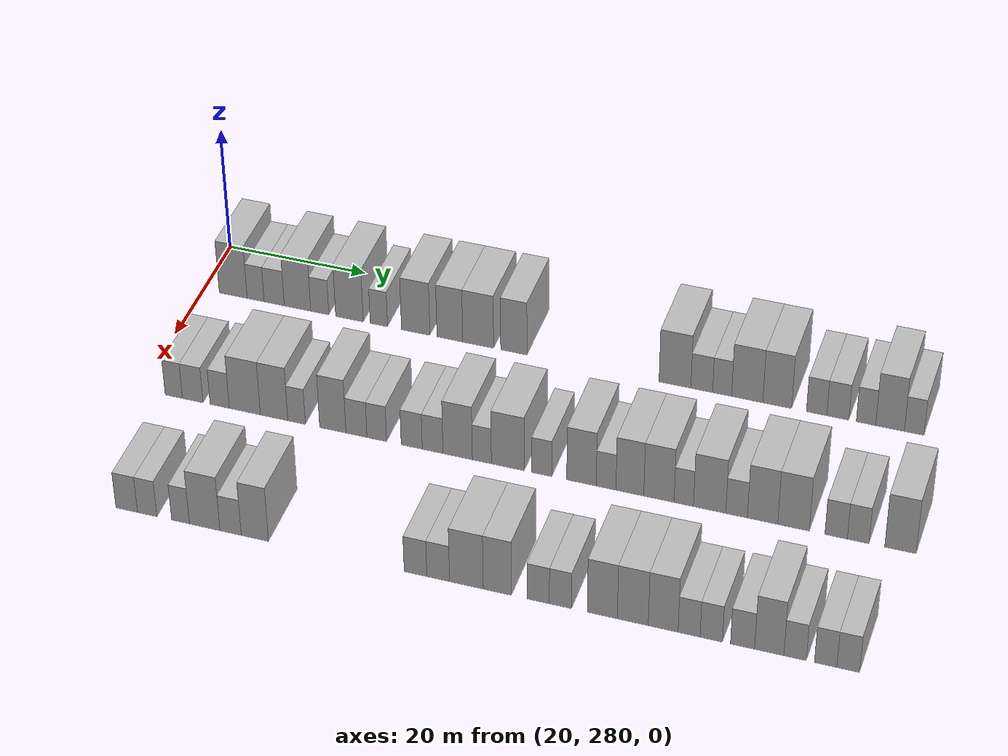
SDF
<sdf version="1.6">
 <world name="default">
  <model name="building_162">
   <static>1</static>
   <pose>25.0000 284.3662 0 0.000000 0.000000 0.000000</pose>
   <link name="link">
    <pose>0 0 4.50 0 0 0</pose>
    <collision name="collision"><geometry><box><size>10.0000 4.0976 9.0000</size></box></geometry></collision>
    <visual name="visual">
     <cast_shadows>0</cast_shadows>
     <geometry><box><size>10.0000 4.0976 9.0000</size></box></geometry>
     <material>
      <script>
       <uri>model://HANNAS_wall/materials/scripts</uri>
       <uri>model://HANNAS_wall/materials/textures</uri>
       <name>vrc/HANNAS_wall</name>
      </script>
     </material>
    </visual>
   </link>
  </model>
  <model name="building_163">
   <static>1</static>
   <pose>25.0000 287.6587 0 0.000000 0.000000 0.000000</pose>
   <link name="link">
    <pose>0 0 3.00 0 0 0</pose>
    <collision name="collision"><geometry><box><size>10.0000 2.4874 6.0000</size></box></geometry></collision>
    <visual name="visual">
     <cast_shadows>0</cast_shadows>
     <geometry><box><size>10.0000 2.4874 6.0000</size></box></geometry>
     <material>
      <script>
       <uri>model://HANNAS_wall/materials/scripts</uri>
       <uri>model://HANNAS_wall/materials/textures</uri>
       <name>vrc/HANNAS_wall</name>
      </script>
     </material>
    </visual>
   </link>
  </model>
  <model name="building_164">
   <static>1</static>
   <pose>25.0000 290.3744 0 0.000000 0.000000 0.000000</pose>
   <link name="link">
    <pose>0 0 3.00 0 0 0</pose>
    <collision name="collision"><geometry><box><size>10.0000 2.9439 6.0000</size></box></geometry></collision>
    <visual name="visual">
     <cast_shadows>0</cast_shadows>
     <geometry><box><size>10.0000 2.9439 6.0000</size></box></geometry>
     <material>
      <script>
       <uri>model://HANNAS_wall/materials/scripts</uri>
       <uri>model://HANNAS_wall/materials/textures</uri>
       <name>vrc/HANNAS_wall</name>
      </script>
     </material>
    </visual>
   </link>
  </model>
  <model name="building_165">
   <static>1</static>
   <pose>25.0000 293.7700 0 0.000000 0.000000 0.000000</pose>
   <link name="link">
    <pose>0 0 4.50 0 0 0</pose>
    <collision name="collision"><geometry><box><size>10.0000 3.8473 9.0000</size></box></geometry></collision>
    <visual name="visual">
     <cast_shadows>0</cast_shadows>
     <geometry><box><size>10.0000 3.8473 9.0000</size></box></geometry>
     <material>
      <script>
       <uri>model://HANNAS_wall/materials/scripts</uri>
       <uri>model://HANNAS_wall/materials/textures</uri>
       <name>vrc/HANNAS_wall</name>
      </script>
     </material>
    </visual>
   </link>
  </model>
  <model name="building_166">
   <static>1</static>
   <pose>25.0000 297.0121 0 0.000000 0.000000 0.000000</pose>
   <link name="link">
    <pose>0 0 3.00 0 0 0</pose>
    <collision name="collision"><geometry><box><size>10.0000 2.6370 6.0000</size></box></geometry></collision>
    <visual name="visual">
     <cast_shadows>0</cast_shadows>
     <geometry><box><size>10.0000 2.6370 6.0000</size></box></geometry>
     <material>
      <script>
       <uri>model://HANNAS_wall/materials/scripts</uri>
       <uri>model://HANNAS_wall/materials/textures</uri>
       <name>vrc/HANNAS_wall</name>
      </script>
     </material>
    </visual>
   </link>
  </model>
  <model name="building_167">
   <static>1</static>
   <pose>25.0000 301.3247 0 0.000000 0.000000 0.000000</pose>
   <link name="link">
    <pose>0 0 4.50 0 0 0</pose>
    <collision name="collision"><geometry><box><size>10.0000 3.9881 9.0000</size></box></geometry></collision>
    <visual name="visual">
     <cast_shadows>0</cast_shadows>
     <geometry><box><size>10.0000 3.9881 9.0000</size></box></geometry>
     <material>
      <script>
       <uri>model://HANNAS_wall/materials/scripts</uri>
       <uri>model://HANNAS_wall/materials/textures</uri>
       <name>vrc/HANNAS_wall</name>
      </script>
     </material>
    </visual>
   </link>
  </model>
  <model name="building_168">
   <static>1</static>
   <pose>25.0000 305.5673 0 0.000000 0.000000 0.000000</pose>
   <link name="link">
    <pose>0 0 3.00 0 0 0</pose>
    <collision name="collision"><geometry><box><size>10.0000 2.4971 6.0000</size></box></geometry></collision>
    <visual name="visual">
     <cast_shadows>0</cast_shadows>
     <geometry><box><size>10.0000 2.4971 6.0000</size></box></geometry>
     <material>
      <script>
       <uri>model://HANNAS_wall/materials/scripts</uri>
       <uri>model://HANNAS_wall/materials/textures</uri>
       <name>vrc/HANNAS_wall</name>
      </script>
     </material>
    </visual>
   </link>
  </model>
  <model name="building_169">
   <static>1</static>
   <pose>25.0000 310.8503 0 0.000000 0.000000 0.000000</pose>
   <link name="link">
    <pose>0 0 4.50 0 0 0</pose>
    <collision name="collision"><geometry><box><size>10.0000 4.0690 9.0000</size></box></geometry></collision>
    <visual name="visual">
     <cast_shadows>0</cast_shadows>
     <geometry><box><size>10.0000 4.0690 9.0000</size></box></geometry>
     <material>
      <script>
       <uri>model://HANNAS_wall/materials/scripts</uri>
       <uri>model://HANNAS_wall/materials/textures</uri>
       <name>vrc/HANNAS_wall</name>
      </script>
     </material>
    </visual>
   </link>
  </model>
  <model name="building_170">
   <static>1</static>
   <pose>25.0000 315.7234 0 0.000000 0.000000 0.000000</pose>
   <link name="link">
    <pose>0 0 4.50 0 0 0</pose>
    <collision name="collision"><geometry><box><size>10.0000 3.6772 9.0000</size></box></geometry></collision>
    <visual name="visual">
     <cast_shadows>0</cast_shadows>
     <geometry><box><size>10.0000 3.6772 9.0000</size></box></geometry>
     <material>
      <script>
       <uri>model://HANNAS_wall/materials/scripts</uri>
       <uri>model://HANNAS_wall/materials/textures</uri>
       <name>vrc/HANNAS_wall</name>
      </script>
     </material>
    </visual>
   </link>
  </model>
  <model name="building_171">
   <static>1</static>
   <pose>25.0000 319.7460 0 0.000000 0.000000 0.000000</pose>
   <link name="link">
    <pose>0 0 4.50 0 0 0</pose>
    <collision name="collision"><geometry><box><size>10.0000 4.3680 9.0000</size></box></geometry></collision>
    <visual name="visual">
     <cast_shadows>0</cast_shadows>
     <geometry><box><size>10.0000 4.3680 9.0000</size></box></geometry>
     <material>
      <script>
       <uri>model://HANNAS_wall/materials/scripts</uri>
       <uri>model://HANNAS_wall/materials/textures</uri>
       <name>vrc/HANNAS_wall</name>
      </script>
     </material>
    </visual>
   </link>
  </model>
  <model name="building_172">
   <static>1</static>
   <pose>25.0000 324.7793 0 0.000000 0.000000 0.000000</pose>
   <link name="link">
    <pose>0 0 4.50 0 0 0</pose>
    <collision name="collision"><geometry><box><size>10.0000 3.6987 9.0000</size></box></geometry></collision>
    <visual name="visual">
     <cast_shadows>0</cast_shadows>
     <geometry><box><size>10.0000 3.6987 9.0000</size></box></geometry>
     <material>
      <script>
       <uri>model://HANNAS_wall/materials/scripts</uri>
       <uri>model://HANNAS_wall/materials/textures</uri>
       <name>vrc/HANNAS_wall</name>
      </script>
     </material>
    </visual>
   </link>
  </model>
  <model name="building_173">
   <static>1</static>
   <pose>25.0000 347.1773 0 0.000000 0.000000 0.000000</pose>
   <link name="link">
    <pose>0 0 4.50 0 0 0</pose>
    <collision name="collision"><geometry><box><size>10.0000 4.3658 9.0000</size></box></geometry></collision>
    <visual name="visual">
     <cast_shadows>0</cast_shadows>
     <geometry><box><size>10.0000 4.3658 9.0000</size></box></geometry>
     <material>
      <script>
       <uri>model://HANNAS_wall/materials/scripts</uri>
       <uri>model://HANNAS_wall/materials/textures</uri>
       <name>vrc/HANNAS_wall</name>
      </script>
     </material>
    </visual>
   </link>
  </model>
  <model name="building_174">
   <static>1</static>
   <pose>25.0000 350.8444 0 0.000000 0.000000 0.000000</pose>
   <link name="link">
    <pose>0 0 3.00 0 0 0</pose>
    <collision name="collision"><geometry><box><size>10.0000 2.9684 6.0000</size></box></geometry></collision>
    <visual name="visual">
     <cast_shadows>0</cast_shadows>
     <geometry><box><size>10.0000 2.9684 6.0000</size></box></geometry>
     <material>
      <script>
       <uri>model://HANNAS_wall/materials/scripts</uri>
       <uri>model://HANNAS_wall/materials/textures</uri>
       <name>vrc/HANNAS_wall</name>
      </script>
     </material>
    </visual>
   </link>
  </model>
  <model name="building_175">
   <static>1</static>
   <pose>25.0000 353.6196 0 0.000000 0.000000 0.000000</pose>
   <link name="link">
    <pose>0 0 3.00 0 0 0</pose>
    <collision name="collision"><geometry><box><size>10.0000 2.5820 6.0000</size></box></geometry></collision>
    <visual name="visual">
     <cast_shadows>0</cast_shadows>
     <geometry><box><size>10.0000 2.5820 6.0000</size></box></geometry>
     <material>
      <script>
       <uri>model://HANNAS_wall/materials/scripts</uri>
       <uri>model://HANNAS_wall/materials/textures</uri>
       <name>vrc/HANNAS_wall</name>
      </script>
     </material>
    </visual>
   </link>
  </model>
  <model name="building_176">
   <static>1</static>
   <pose>25.0000 357.0332 0 0.000000 0.000000 0.000000</pose>
   <link name="link">
    <pose>0 0 4.50 0 0 0</pose>
    <collision name="collision"><geometry><box><size>10.0000 4.2451 9.0000</size></box></geometry></collision>
    <visual name="visual">
     <cast_shadows>0</cast_shadows>
     <geometry><box><size>10.0000 4.2451 9.0000</size></box></geometry>
     <material>
      <script>
       <uri>model://HANNAS_wall/materials/scripts</uri>
       <uri>model://HANNAS_wall/materials/textures</uri>
       <name>vrc/HANNAS_wall</name>
      </script>
     </material>
    </visual>
   </link>
  </model>
  <model name="building_177">
   <static>1</static>
   <pose>25.0000 361.1039 0 0.000000 0.000000 0.000000</pose>
   <link name="link">
    <pose>0 0 4.50 0 0 0</pose>
    <collision name="collision"><geometry><box><size>10.0000 3.8964 9.0000</size></box></geometry></collision>
    <visual name="visual">
     <cast_shadows>0</cast_shadows>
     <geometry><box><size>10.0000 3.8964 9.0000</size></box></geometry>
     <material>
      <script>
       <uri>model://HANNAS_wall/materials/scripts</uri>
       <uri>model://HANNAS_wall/materials/textures</uri>
       <name>vrc/HANNAS_wall</name>
      </script>
     </material>
    </visual>
   </link>
  </model>
  <model name="building_178">
   <static>1</static>
   <pose>25.0000 366.4140 0 0.000000 0.000000 0.000000</pose>
   <link name="link">
    <pose>0 0 3.00 0 0 0</pose>
    <collision name="collision"><geometry><box><size>10.0000 2.7236 6.0000</size></box></geometry></collision>
    <visual name="visual">
     <cast_shadows>0</cast_shadows>
     <geometry><box><size>10.0000 2.7236 6.0000</size></box></geometry>
     <material>
      <script>
       <uri>model://HANNAS_wall/materials/scripts</uri>
       <uri>model://HANNAS_wall/materials/textures</uri>
       <name>vrc/HANNAS_wall</name>
      </script>
     </material>
    </visual>
   </link>
  </model>
  <model name="building_179">
   <static>1</static>
   <pose>25.0000 369.2532 0 0.000000 0.000000 0.000000</pose>
   <link name="link">
    <pose>0 0 3.00 0 0 0</pose>
    <collision name="collision"><geometry><box><size>10.0000 2.9548 6.0000</size></box></geometry></collision>
    <visual name="visual">
     <cast_shadows>0</cast_shadows>
     <geometry><box><size>10.0000 2.9548 6.0000</size></box></geometry>
     <material>
      <script>
       <uri>model://HANNAS_wall/materials/scripts</uri>
       <uri>model://HANNAS_wall/materials/textures</uri>
       <name>vrc/HANNAS_wall</name>
      </script>
     </material>
    </visual>
   </link>
  </model>
  <model name="building_180">
   <static>1</static>
   <pose>25.0000 373.0168 0 0.000000 0.000000 0.000000</pose>
   <link name="link">
    <pose>0 0 3.00 0 0 0</pose>
    <collision name="collision"><geometry><box><size>10.0000 2.5725 6.0000</size></box></geometry></collision>
    <visual name="visual">
     <cast_shadows>0</cast_shadows>
     <geometry><box><size>10.0000 2.5725 6.0000</size></box></geometry>
     <material>
      <script>
       <uri>model://HANNAS_wall/materials/scripts</uri>
       <uri>model://HANNAS_wall/materials/textures</uri>
       <name>vrc/HANNAS_wall</name>
      </script>
     </material>
    </visual>
   </link>
  </model>
  <model name="building_181">
   <static>1</static>
   <pose>25.0000 376.2108 0 0.000000 0.000000 0.000000</pose>
   <link name="link">
    <pose>0 0 4.50 0 0 0</pose>
    <collision name="collision"><geometry><box><size>10.0000 3.8154 9.0000</size></box></geometry></collision>
    <visual name="visual">
     <cast_shadows>0</cast_shadows>
     <geometry><box><size>10.0000 3.8154 9.0000</size></box></geometry>
     <material>
      <script>
       <uri>model://HANNAS_wall/materials/scripts</uri>
       <uri>model://HANNAS_wall/materials/textures</uri>
       <name>vrc/HANNAS_wall</name>
      </script>
     </material>
    </visual>
   </link>
  </model>
  <model name="building_182">
   <static>1</static>
   <pose>25.0000 379.4158 0 0.000000 0.000000 0.000000</pose>
   <link name="link">
    <pose>0 0 3.00 0 0 0</pose>
    <collision name="collision"><geometry><box><size>10.0000 2.5948 6.0000</size></box></geometry></collision>
    <visual name="visual">
     <cast_shadows>0</cast_shadows>
     <geometry><box><size>10.0000 2.5948 6.0000</size></box></geometry>
     <material>
      <script>
       <uri>model://HANNAS_wall/materials/scripts</uri>
       <uri>model://HANNAS_wall/materials/textures</uri>
       <name>vrc/HANNAS_wall</name>
      </script>
     </material>
    </visual>
   </link>
  </model>
  <model name="building_350">
   <static>1</static>
   <pose>47.0000 284.7461 0 0.000000 0.000000 0.000000</pose>
   <link name="link">
    <pose>0 0 3.00 0 0 0</pose>
    <collision name="collision"><geometry><box><size>10.0000 2.4396 6.0000</size></box></geometry></collision>
    <visual name="visual">
     <cast_shadows>0</cast_shadows>
     <geometry><box><size>10.0000 2.4396 6.0000</size></box></geometry>
     <material>
      <script>
       <uri>model://HANNAS_wall/materials/scripts</uri>
       <uri>model://HANNAS_wall/materials/textures</uri>
       <name>vrc/HANNAS_wall</name>
      </script>
     </material>
    </visual>
   </link>
  </model>
  <model name="building_351">
   <static>1</static>
   <pose>47.0000 287.4330 0 0.000000 0.000000 0.000000</pose>
   <link name="link">
    <pose>0 0 3.00 0 0 0</pose>
    <collision name="collision"><geometry><box><size>10.0000 2.9341 6.0000</size></box></geometry></collision>
    <visual name="visual">
     <cast_shadows>0</cast_shadows>
     <geometry><box><size>10.0000 2.9341 6.0000</size></box></geometry>
     <material>
      <script>
       <uri>model://HANNAS_wall/materials/scripts</uri>
       <uri>model://HANNAS_wall/materials/textures</uri>
       <name>vrc/HANNAS_wall</name>
      </script>
     </material>
    </visual>
   </link>
  </model>
  <model name="building_352">
   <static>1</static>
   <pose>47.0000 291.2522 0 0.000000 0.000000 0.000000</pose>
   <link name="link">
    <pose>0 0 3.00 0 0 0</pose>
    <collision name="collision"><geometry><box><size>10.0000 2.7044 6.0000</size></box></geometry></collision>
    <visual name="visual">
     <cast_shadows>0</cast_shadows>
     <geometry><box><size>10.0000 2.7044 6.0000</size></box></geometry>
     <material>
      <script>
       <uri>model://HANNAS_wall/materials/scripts</uri>
       <uri>model://HANNAS_wall/materials/textures</uri>
       <name>vrc/HANNAS_wall</name>
      </script>
     </material>
    </visual>
   </link>
  </model>
  <model name="building_353">
   <static>1</static>
   <pose>47.0000 294.7886 0 0.000000 0.000000 0.000000</pose>
   <link name="link">
    <pose>0 0 4.50 0 0 0</pose>
    <collision name="collision"><geometry><box><size>10.0000 4.3683 9.0000</size></box></geometry></collision>
    <visual name="visual">
     <cast_shadows>0</cast_shadows>
     <geometry><box><size>10.0000 4.3683 9.0000</size></box></geometry>
     <material>
      <script>
       <uri>model://HANNAS_wall/materials/scripts</uri>
       <uri>model://HANNAS_wall/materials/textures</uri>
       <name>vrc/HANNAS_wall</name>
      </script>
     </material>
    </visual>
   </link>
  </model>
  <model name="building_354">
   <static>1</static>
   <pose>47.0000 298.8963 0 0.000000 0.000000 0.000000</pose>
   <link name="link">
    <pose>0 0 4.50 0 0 0</pose>
    <collision name="collision"><geometry><box><size>10.0000 3.8470 9.0000</size></box></geometry></collision>
    <visual name="visual">
     <cast_shadows>0</cast_shadows>
     <geometry><box><size>10.0000 3.8470 9.0000</size></box></geometry>
     <material>
      <script>
       <uri>model://HANNAS_wall/materials/scripts</uri>
       <uri>model://HANNAS_wall/materials/textures</uri>
       <name>vrc/HANNAS_wall</name>
      </script>
     </material>
    </visual>
   </link>
  </model>
  <model name="building_355">
   <static>1</static>
   <pose>47.0000 302.0401 0 0.000000 0.000000 0.000000</pose>
   <link name="link">
    <pose>0 0 3.00 0 0 0</pose>
    <collision name="collision"><geometry><box><size>10.0000 2.4406 6.0000</size></box></geometry></collision>
    <visual name="visual">
     <cast_shadows>0</cast_shadows>
     <geometry><box><size>10.0000 2.4406 6.0000</size></box></geometry>
     <material>
      <script>
       <uri>model://HANNAS_wall/materials/scripts</uri>
       <uri>model://HANNAS_wall/materials/textures</uri>
       <name>vrc/HANNAS_wall</name>
      </script>
     </material>
    </visual>
   </link>
  </model>
  <model name="building_356">
   <static>1</static>
   <pose>47.0000 307.0786 0 0.000000 0.000000 0.000000</pose>
   <link name="link">
    <pose>0 0 4.50 0 0 0</pose>
    <collision name="collision"><geometry><box><size>10.0000 3.6363 9.0000</size></box></geometry></collision>
    <visual name="visual">
     <cast_shadows>0</cast_shadows>
     <geometry><box><size>10.0000 3.6363 9.0000</size></box></geometry>
     <material>
      <script>
       <uri>model://HANNAS_wall/materials/scripts</uri>
       <uri>model://HANNAS_wall/materials/textures</uri>
       <name>vrc/HANNAS_wall</name>
      </script>
     </material>
    </visual>
   </link>
  </model>
  <model name="building_357">
   <static>1</static>
   <pose>47.0000 310.3473 0 0.000000 0.000000 0.000000</pose>
   <link name="link">
    <pose>0 0 3.00 0 0 0</pose>
    <collision name="collision"><geometry><box><size>10.0000 2.9011 6.0000</size></box></geometry></collision>
    <visual name="visual">
     <cast_shadows>0</cast_shadows>
     <geometry><box><size>10.0000 2.9011 6.0000</size></box></geometry>
     <material>
      <script>
       <uri>model://HANNAS_wall/materials/scripts</uri>
       <uri>model://HANNAS_wall/materials/textures</uri>
       <name>vrc/HANNAS_wall</name>
      </script>
     </material>
    </visual>
   </link>
  </model>
  <model name="building_358">
   <static>1</static>
   <pose>47.0000 313.1502 0 0.000000 0.000000 0.000000</pose>
   <link name="link">
    <pose>0 0 3.00 0 0 0</pose>
    <collision name="collision"><geometry><box><size>10.0000 2.7047 6.0000</size></box></geometry></collision>
    <visual name="visual">
     <cast_shadows>0</cast_shadows>
     <geometry><box><size>10.0000 2.7047 6.0000</size></box></geometry>
     <material>
      <script>
       <uri>model://HANNAS_wall/materials/scripts</uri>
       <uri>model://HANNAS_wall/materials/textures</uri>
       <name>vrc/HANNAS_wall</name>
      </script>
     </material>
    </visual>
   </link>
  </model>
  <model name="building_359">
   <static>1</static>
   <pose>47.0000 317.9460 0 0.000000 0.000000 0.000000</pose>
   <link name="link">
    <pose>0 0 3.00 0 0 0</pose>
    <collision name="collision"><geometry><box><size>10.0000 2.8871 6.0000</size></box></geometry></collision>
    <visual name="visual">
     <cast_shadows>0</cast_shadows>
     <geometry><box><size>10.0000 2.8871 6.0000</size></box></geometry>
     <material>
      <script>
       <uri>model://HANNAS_wall/materials/scripts</uri>
       <uri>model://HANNAS_wall/materials/textures</uri>
       <name>vrc/HANNAS_wall</name>
      </script>
     </material>
    </visual>
   </link>
  </model>
  <model name="building_360">
   <static>1</static>
   <pose>47.0000 320.8028 0 0.000000 0.000000 0.000000</pose>
   <link name="link">
    <pose>0 0 3.00 0 0 0</pose>
    <collision name="collision"><geometry><box><size>10.0000 2.8265 6.0000</size></box></geometry></collision>
    <visual name="visual">
     <cast_shadows>0</cast_shadows>
     <geometry><box><size>10.0000 2.8265 6.0000</size></box></geometry>
     <material>
      <script>
       <uri>model://HANNAS_wall/materials/scripts</uri>
       <uri>model://HANNAS_wall/materials/textures</uri>
       <name>vrc/HANNAS_wall</name>
      </script>
     </material>
    </visual>
   </link>
  </model>
  <model name="building_361">
   <static>1</static>
   <pose>47.0000 324.2078 0 0.000000 0.000000 0.000000</pose>
   <link name="link">
    <pose>0 0 4.50 0 0 0</pose>
    <collision name="collision"><geometry><box><size>10.0000 3.9834 9.0000</size></box></geometry></collision>
    <visual name="visual">
     <cast_shadows>0</cast_shadows>
     <geometry><box><size>10.0000 3.9834 9.0000</size></box></geometry>
     <material>
      <script>
       <uri>model://HANNAS_wall/materials/scripts</uri>
       <uri>model://HANNAS_wall/materials/textures</uri>
       <name>vrc/HANNAS_wall</name>
      </script>
     </material>
    </visual>
   </link>
  </model>
  <model name="building_362">
   <static>1</static>
   <pose>47.0000 327.4874 0 0.000000 0.000000 0.000000</pose>
   <link name="link">
    <pose>0 0 3.00 0 0 0</pose>
    <collision name="collision"><geometry><box><size>10.0000 2.5759 6.0000</size></box></geometry></collision>
    <visual name="visual">
     <cast_shadows>0</cast_shadows>
     <geometry><box><size>10.0000 2.5759 6.0000</size></box></geometry>
     <material>
      <script>
       <uri>model://HANNAS_wall/materials/scripts</uri>
       <uri>model://HANNAS_wall/materials/textures</uri>
       <name>vrc/HANNAS_wall</name>
      </script>
     </material>
    </visual>
   </link>
  </model>
  <model name="building_363">
   <static>1</static>
   <pose>47.0000 330.9895 0 0.000000 0.000000 0.000000</pose>
   <link name="link">
    <pose>0 0 4.50 0 0 0</pose>
    <collision name="collision"><geometry><box><size>10.0000 4.4284 9.0000</size></box></geometry></collision>
    <visual name="visual">
     <cast_shadows>0</cast_shadows>
     <geometry><box><size>10.0000 4.4284 9.0000</size></box></geometry>
     <material>
      <script>
       <uri>model://HANNAS_wall/materials/scripts</uri>
       <uri>model://HANNAS_wall/materials/textures</uri>
       <name>vrc/HANNAS_wall</name>
      </script>
     </material>
    </visual>
   </link>
  </model>
  <model name="building_364">
   <static>1</static>
   <pose>47.0000 335.5547 0 0.000000 0.000000 0.000000</pose>
   <link name="link">
    <pose>0 0 3.00 0 0 0</pose>
    <collision name="collision"><geometry><box><size>10.0000 2.7021 6.0000</size></box></geometry></collision>
    <visual name="visual">
     <cast_shadows>0</cast_shadows>
     <geometry><box><size>10.0000 2.7021 6.0000</size></box></geometry>
     <material>
      <script>
       <uri>model://HANNAS_wall/materials/scripts</uri>
       <uri>model://HANNAS_wall/materials/textures</uri>
       <name>vrc/HANNAS_wall</name>
      </script>
     </material>
    </visual>
   </link>
  </model>
  <model name="building_365">
   <static>1</static>
   <pose>47.0000 340.8673 0 0.000000 0.000000 0.000000</pose>
   <link name="link">
    <pose>0 0 4.50 0 0 0</pose>
    <collision name="collision"><geometry><box><size>10.0000 3.9230 9.0000</size></box></geometry></collision>
    <visual name="visual">
     <cast_shadows>0</cast_shadows>
     <geometry><box><size>10.0000 3.9230 9.0000</size></box></geometry>
     <material>
      <script>
       <uri>model://HANNAS_wall/materials/scripts</uri>
       <uri>model://HANNAS_wall/materials/textures</uri>
       <name>vrc/HANNAS_wall</name>
      </script>
     </material>
    </visual>
   </link>
  </model>
  <model name="building_366">
   <static>1</static>
   <pose>47.0000 344.1365 0 0.000000 0.000000 0.000000</pose>
   <link name="link">
    <pose>0 0 3.00 0 0 0</pose>
    <collision name="collision"><geometry><box><size>10.0000 2.6156 6.0000</size></box></geometry></collision>
    <visual name="visual">
     <cast_shadows>0</cast_shadows>
     <geometry><box><size>10.0000 2.6156 6.0000</size></box></geometry>
     <material>
      <script>
       <uri>model://HANNAS_wall/materials/scripts</uri>
       <uri>model://HANNAS_wall/materials/textures</uri>
       <name>vrc/HANNAS_wall</name>
      </script>
     </material>
    </visual>
   </link>
  </model>
  <model name="building_367">
   <static>1</static>
   <pose>47.0000 347.2839 0 0.000000 0.000000 0.000000</pose>
   <link name="link">
    <pose>0 0 4.50 0 0 0</pose>
    <collision name="collision"><geometry><box><size>10.0000 3.6791 9.0000</size></box></geometry></collision>
    <visual name="visual">
     <cast_shadows>0</cast_shadows>
     <geometry><box><size>10.0000 3.6791 9.0000</size></box></geometry>
     <material>
      <script>
       <uri>model://HANNAS_wall/materials/scripts</uri>
       <uri>model://HANNAS_wall/materials/textures</uri>
       <name>vrc/HANNAS_wall</name>
      </script>
     </material>
    </visual>
   </link>
  </model>
  <model name="building_368">
   <static>1</static>
   <pose>47.0000 351.1181 0 0.000000 0.000000 0.000000</pose>
   <link name="link">
    <pose>0 0 4.50 0 0 0</pose>
    <collision name="collision"><geometry><box><size>10.0000 3.9895 9.0000</size></box></geometry></collision>
    <visual name="visual">
     <cast_shadows>0</cast_shadows>
     <geometry><box><size>10.0000 3.9895 9.0000</size></box></geometry>
     <material>
      <script>
       <uri>model://HANNAS_wall/materials/scripts</uri>
       <uri>model://HANNAS_wall/materials/textures</uri>
       <name>vrc/HANNAS_wall</name>
      </script>
     </material>
    </visual>
   </link>
  </model>
  <model name="building_369">
   <static>1</static>
   <pose>47.0000 354.3824 0 0.000000 0.000000 0.000000</pose>
   <link name="link">
    <pose>0 0 3.00 0 0 0</pose>
    <collision name="collision"><geometry><box><size>10.0000 2.5391 6.0000</size></box></geometry></collision>
    <visual name="visual">
     <cast_shadows>0</cast_shadows>
     <geometry><box><size>10.0000 2.5391 6.0000</size></box></geometry>
     <material>
      <script>
       <uri>model://HANNAS_wall/materials/scripts</uri>
       <uri>model://HANNAS_wall/materials/textures</uri>
       <name>vrc/HANNAS_wall</name>
      </script>
     </material>
    </visual>
   </link>
  </model>
  <model name="building_370">
   <static>1</static>
   <pose>47.0000 357.7613 0 0.000000 0.000000 0.000000</pose>
   <link name="link">
    <pose>0 0 4.50 0 0 0</pose>
    <collision name="collision"><geometry><box><size>10.0000 4.2188 9.0000</size></box></geometry></collision>
    <visual name="visual">
     <cast_shadows>0</cast_shadows>
     <geometry><box><size>10.0000 4.2188 9.0000</size></box></geometry>
     <material>
      <script>
       <uri>model://HANNAS_wall/materials/scripts</uri>
       <uri>model://HANNAS_wall/materials/textures</uri>
       <name>vrc/HANNAS_wall</name>
      </script>
     </material>
    </visual>
   </link>
  </model>
  <model name="building_371">
   <static>1</static>
   <pose>47.0000 361.2735 0 0.000000 0.000000 0.000000</pose>
   <link name="link">
    <pose>0 0 3.00 0 0 0</pose>
    <collision name="collision"><geometry><box><size>10.0000 2.8055 6.0000</size></box></geometry></collision>
    <visual name="visual">
     <cast_shadows>0</cast_shadows>
     <geometry><box><size>10.0000 2.8055 6.0000</size></box></geometry>
     <material>
      <script>
       <uri>model://HANNAS_wall/materials/scripts</uri>
       <uri>model://HANNAS_wall/materials/textures</uri>
       <name>vrc/HANNAS_wall</name>
      </script>
     </material>
    </visual>
   </link>
  </model>
  <model name="building_372">
   <static>1</static>
   <pose>47.0000 364.6438 0 0.000000 0.000000 0.000000</pose>
   <link name="link">
    <pose>0 0 4.50 0 0 0</pose>
    <collision name="collision"><geometry><box><size>10.0000 3.9350 9.0000</size></box></geometry></collision>
    <visual name="visual">
     <cast_shadows>0</cast_shadows>
     <geometry><box><size>10.0000 3.9350 9.0000</size></box></geometry>
     <material>
      <script>
       <uri>model://HANNAS_wall/materials/scripts</uri>
       <uri>model://HANNAS_wall/materials/textures</uri>
       <name>vrc/HANNAS_wall</name>
      </script>
     </material>
    </visual>
   </link>
  </model>
  <model name="building_373">
   <static>1</static>
   <pose>47.0000 368.6529 0 0.000000 0.000000 0.000000</pose>
   <link name="link">
    <pose>0 0 4.50 0 0 0</pose>
    <collision name="collision"><geometry><box><size>10.0000 4.0832 9.0000</size></box></geometry></collision>
    <visual name="visual">
     <cast_shadows>0</cast_shadows>
     <geometry><box><size>10.0000 4.0832 9.0000</size></box></geometry>
     <material>
      <script>
       <uri>model://HANNAS_wall/materials/scripts</uri>
       <uri>model://HANNAS_wall/materials/textures</uri>
       <name>vrc/HANNAS_wall</name>
      </script>
     </material>
    </visual>
   </link>
  </model>
  <model name="building_374">
   <static>1</static>
   <pose>47.0000 374.1286 0 0.000000 0.000000 0.000000</pose>
   <link name="link">
    <pose>0 0 3.00 0 0 0</pose>
    <collision name="collision"><geometry><box><size>10.0000 2.8682 6.0000</size></box></geometry></collision>
    <visual name="visual">
     <cast_shadows>0</cast_shadows>
     <geometry><box><size>10.0000 2.8682 6.0000</size></box></geometry>
     <material>
      <script>
       <uri>model://HANNAS_wall/materials/scripts</uri>
       <uri>model://HANNAS_wall/materials/textures</uri>
       <name>vrc/HANNAS_wall</name>
      </script>
     </material>
    </visual>
   </link>
  </model>
  <model name="building_375">
   <static>1</static>
   <pose>47.0000 376.9460 0 0.000000 0.000000 0.000000</pose>
   <link name="link">
    <pose>0 0 3.00 0 0 0</pose>
    <collision name="collision"><geometry><box><size>10.0000 2.7667 6.0000</size></box></geometry></collision>
    <visual name="visual">
     <cast_shadows>0</cast_shadows>
     <geometry><box><size>10.0000 2.7667 6.0000</size></box></geometry>
     <material>
      <script>
       <uri>model://HANNAS_wall/materials/scripts</uri>
       <uri>model://HANNAS_wall/materials/textures</uri>
       <name>vrc/HANNAS_wall</name>
      </script>
     </material>
    </visual>
   </link>
  </model>
  <model name="building_376">
   <static>1</static>
   <pose>47.0000 382.3207 0 0.000000 0.000000 0.000000</pose>
   <link name="link">
    <pose>0 0 4.50 0 0 0</pose>
    <collision name="collision"><geometry><box><size>10.0000 3.9827 9.0000</size></box></geometry></collision>
    <visual name="visual">
     <cast_shadows>0</cast_shadows>
     <geometry><box><size>10.0000 3.9827 9.0000</size></box></geometry>
     <material>
      <script>
       <uri>model://HANNAS_wall/materials/scripts</uri>
       <uri>model://HANNAS_wall/materials/textures</uri>
       <name>vrc/HANNAS_wall</name>
      </script>
     </material>
    </visual>
   </link>
  </model>
  <model name="building_538">
   <static>1</static>
   <pose>69.0000 287.5118 0 0.000000 0.000000 0.000000</pose>
   <link name="link">
    <pose>0 0 3.00 0 0 0</pose>
    <collision name="collision"><geometry><box><size>10.0000 2.9483 6.0000</size></box></geometry></collision>
    <visual name="visual">
     <cast_shadows>0</cast_shadows>
     <geometry><box><size>10.0000 2.9483 6.0000</size></box></geometry>
     <material>
      <script>
       <uri>model://HANNAS_wall/materials/scripts</uri>
       <uri>model://HANNAS_wall/materials/textures</uri>
       <name>vrc/HANNAS_wall</name>
      </script>
     </material>
    </visual>
   </link>
  </model>
  <model name="building_539">
   <static>1</static>
   <pose>69.0000 290.3092 0 0.000000 0.000000 0.000000</pose>
   <link name="link">
    <pose>0 0 3.00 0 0 0</pose>
    <collision name="collision"><geometry><box><size>10.0000 2.6465 6.0000</size></box></geometry></collision>
    <visual name="visual">
     <cast_shadows>0</cast_shadows>
     <geometry><box><size>10.0000 2.6465 6.0000</size></box></geometry>
     <material>
      <script>
       <uri>model://HANNAS_wall/materials/scripts</uri>
       <uri>model://HANNAS_wall/materials/textures</uri>
       <name>vrc/HANNAS_wall</name>
      </script>
     </material>
    </visual>
   </link>
  </model>
  <model name="building_540">
   <static>1</static>
   <pose>69.0000 294.8364 0 0.000000 0.000000 0.000000</pose>
   <link name="link">
    <pose>0 0 3.00 0 0 0</pose>
    <collision name="collision"><geometry><box><size>10.0000 2.4080 6.0000</size></box></geometry></collision>
    <visual name="visual">
     <cast_shadows>0</cast_shadows>
     <geometry><box><size>10.0000 2.4080 6.0000</size></box></geometry>
     <material>
      <script>
       <uri>model://HANNAS_wall/materials/scripts</uri>
       <uri>model://HANNAS_wall/materials/textures</uri>
       <name>vrc/HANNAS_wall</name>
      </script>
     </material>
    </visual>
   </link>
  </model>
  <model name="building_541">
   <static>1</static>
   <pose>69.0000 298.1030 0 0.000000 0.000000 0.000000</pose>
   <link name="link">
    <pose>0 0 4.50 0 0 0</pose>
    <collision name="collision"><geometry><box><size>10.0000 4.1252 9.0000</size></box></geometry></collision>
    <visual name="visual">
     <cast_shadows>0</cast_shadows>
     <geometry><box><size>10.0000 4.1252 9.0000</size></box></geometry>
     <material>
      <script>
       <uri>model://HANNAS_wall/materials/scripts</uri>
       <uri>model://HANNAS_wall/materials/textures</uri>
       <name>vrc/HANNAS_wall</name>
      </script>
     </material>
    </visual>
   </link>
  </model>
  <model name="building_542">
   <static>1</static>
   <pose>69.0000 301.5966 0 0.000000 0.000000 0.000000</pose>
   <link name="link">
    <pose>0 0 3.00 0 0 0</pose>
    <collision name="collision"><geometry><box><size>10.0000 2.8621 6.0000</size></box></geometry></collision>
    <visual name="visual">
     <cast_shadows>0</cast_shadows>
     <geometry><box><size>10.0000 2.8621 6.0000</size></box></geometry>
     <material>
      <script>
       <uri>model://HANNAS_wall/materials/scripts</uri>
       <uri>model://HANNAS_wall/materials/textures</uri>
       <name>vrc/HANNAS_wall</name>
      </script>
     </material>
    </visual>
   </link>
  </model>
  <model name="building_543">
   <static>1</static>
   <pose>69.0000 304.8522 0 0.000000 0.000000 0.000000</pose>
   <link name="link">
    <pose>0 0 4.50 0 0 0</pose>
    <collision name="collision"><geometry><box><size>10.0000 3.6491 9.0000</size></box></geometry></collision>
    <visual name="visual">
     <cast_shadows>0</cast_shadows>
     <geometry><box><size>10.0000 3.6491 9.0000</size></box></geometry>
     <material>
      <script>
       <uri>model://HANNAS_wall/materials/scripts</uri>
       <uri>model://HANNAS_wall/materials/textures</uri>
       <name>vrc/HANNAS_wall</name>
      </script>
     </material>
    </visual>
   </link>
  </model>
  <model name="building_544">
   <static>1</static>
   <pose>69.0000 326.0980 0 0.000000 0.000000 0.000000</pose>
   <link name="link">
    <pose>0 0 3.00 0 0 0</pose>
    <collision name="collision"><geometry><box><size>10.0000 2.9475 6.0000</size></box></geometry></collision>
    <visual name="visual">
     <cast_shadows>0</cast_shadows>
     <geometry><box><size>10.0000 2.9475 6.0000</size></box></geometry>
     <material>
      <script>
       <uri>model://HANNAS_wall/materials/scripts</uri>
       <uri>model://HANNAS_wall/materials/textures</uri>
       <name>vrc/HANNAS_wall</name>
      </script>
     </material>
    </visual>
   </link>
  </model>
  <model name="building_545">
   <static>1</static>
   <pose>69.0000 329.0532 0 0.000000 0.000000 0.000000</pose>
   <link name="link">
    <pose>0 0 3.00 0 0 0</pose>
    <collision name="collision"><geometry><box><size>10.0000 2.9630 6.0000</size></box></geometry></collision>
    <visual name="visual">
     <cast_shadows>0</cast_shadows>
     <geometry><box><size>10.0000 2.9630 6.0000</size></box></geometry>
     <material>
      <script>
       <uri>model://HANNAS_wall/materials/scripts</uri>
       <uri>model://HANNAS_wall/materials/textures</uri>
       <name>vrc/HANNAS_wall</name>
      </script>
     </material>
    </visual>
   </link>
  </model>
  <model name="building_546">
   <static>1</static>
   <pose>69.0000 332.7147 0 0.000000 0.000000 0.000000</pose>
   <link name="link">
    <pose>0 0 4.50 0 0 0</pose>
    <collision name="collision"><geometry><box><size>10.0000 4.3601 9.0000</size></box></geometry></collision>
    <visual name="visual">
     <cast_shadows>0</cast_shadows>
     <geometry><box><size>10.0000 4.3601 9.0000</size></box></geometry>
     <material>
      <script>
       <uri>model://HANNAS_wall/materials/scripts</uri>
       <uri>model://HANNAS_wall/materials/textures</uri>
       <name>vrc/HANNAS_wall</name>
      </script>
     </material>
    </visual>
   </link>
  </model>
  <model name="building_547">
   <static>1</static>
   <pose>69.0000 336.7121 0 0.000000 0.000000 0.000000</pose>
   <link name="link">
    <pose>0 0 4.50 0 0 0</pose>
    <collision name="collision"><geometry><box><size>10.0000 3.6346 9.0000</size></box></geometry></collision>
    <visual name="visual">
     <cast_shadows>0</cast_shadows>
     <geometry><box><size>10.0000 3.6346 9.0000</size></box></geometry>
     <material>
      <script>
       <uri>model://HANNAS_wall/materials/scripts</uri>
       <uri>model://HANNAS_wall/materials/textures</uri>
       <name>vrc/HANNAS_wall</name>
      </script>
     </material>
    </visual>
   </link>
  </model>
  <model name="building_548">
   <static>1</static>
   <pose>69.0000 341.9580 0 0.000000 0.000000 0.000000</pose>
   <link name="link">
    <pose>0 0 3.00 0 0 0</pose>
    <collision name="collision"><geometry><box><size>10.0000 2.8572 6.0000</size></box></geometry></collision>
    <visual name="visual">
     <cast_shadows>0</cast_shadows>
     <geometry><box><size>10.0000 2.8572 6.0000</size></box></geometry>
     <material>
      <script>
       <uri>model://HANNAS_wall/materials/scripts</uri>
       <uri>model://HANNAS_wall/materials/textures</uri>
       <name>vrc/HANNAS_wall</name>
      </script>
     </material>
    </visual>
   </link>
  </model>
  <model name="building_549">
   <static>1</static>
   <pose>69.0000 344.8066 0 0.000000 0.000000 0.000000</pose>
   <link name="link">
    <pose>0 0 3.00 0 0 0</pose>
    <collision name="collision"><geometry><box><size>10.0000 2.8399 6.0000</size></box></geometry></collision>
    <visual name="visual">
     <cast_shadows>0</cast_shadows>
     <geometry><box><size>10.0000 2.8399 6.0000</size></box></geometry>
     <material>
      <script>
       <uri>model://HANNAS_wall/materials/scripts</uri>
       <uri>model://HANNAS_wall/materials/textures</uri>
       <name>vrc/HANNAS_wall</name>
      </script>
     </material>
    </visual>
   </link>
  </model>
  <model name="building_550">
   <static>1</static>
   <pose>69.0000 350.1208 0 0.000000 0.000000 0.000000</pose>
   <link name="link">
    <pose>0 0 4.50 0 0 0</pose>
    <collision name="collision"><geometry><box><size>10.0000 3.7887 9.0000</size></box></geometry></collision>
    <visual name="visual">
     <cast_shadows>0</cast_shadows>
     <geometry><box><size>10.0000 3.7887 9.0000</size></box></geometry>
     <material>
      <script>
       <uri>model://HANNAS_wall/materials/scripts</uri>
       <uri>model://HANNAS_wall/materials/textures</uri>
       <name>vrc/HANNAS_wall</name>
      </script>
     </material>
    </visual>
   </link>
  </model>
  <model name="building_551">
   <static>1</static>
   <pose>69.0000 353.9696 0 0.000000 0.000000 0.000000</pose>
   <link name="link">
    <pose>0 0 4.50 0 0 0</pose>
    <collision name="collision"><geometry><box><size>10.0000 3.9089 9.0000</size></box></geometry></collision>
    <visual name="visual">
     <cast_shadows>0</cast_shadows>
     <geometry><box><size>10.0000 3.9089 9.0000</size></box></geometry>
     <material>
      <script>
       <uri>model://HANNAS_wall/materials/scripts</uri>
       <uri>model://HANNAS_wall/materials/textures</uri>
       <name>vrc/HANNAS_wall</name>
      </script>
     </material>
    </visual>
   </link>
  </model>
  <model name="building_552">
   <static>1</static>
   <pose>69.0000 357.7944 0 0.000000 0.000000 0.000000</pose>
   <link name="link">
    <pose>0 0 4.50 0 0 0</pose>
    <collision name="collision"><geometry><box><size>10.0000 3.7408 9.0000</size></box></geometry></collision>
    <visual name="visual">
     <cast_shadows>0</cast_shadows>
     <geometry><box><size>10.0000 3.7408 9.0000</size></box></geometry>
     <material>
      <script>
       <uri>model://HANNAS_wall/materials/scripts</uri>
       <uri>model://HANNAS_wall/materials/textures</uri>
       <name>vrc/HANNAS_wall</name>
      </script>
     </material>
    </visual>
   </link>
  </model>
  <model name="building_553">
   <static>1</static>
   <pose>69.0000 361.0397 0 0.000000 0.000000 0.000000</pose>
   <link name="link">
    <pose>0 0 3.00 0 0 0</pose>
    <collision name="collision"><geometry><box><size>10.0000 2.7497 6.0000</size></box></geometry></collision>
    <visual name="visual">
     <cast_shadows>0</cast_shadows>
     <geometry><box><size>10.0000 2.7497 6.0000</size></box></geometry>
     <material>
      <script>
       <uri>model://HANNAS_wall/materials/scripts</uri>
       <uri>model://HANNAS_wall/materials/textures</uri>
       <name>vrc/HANNAS_wall</name>
      </script>
     </material>
    </visual>
   </link>
  </model>
  <model name="building_554">
   <static>1</static>
   <pose>69.0000 363.8120 0 0.000000 0.000000 0.000000</pose>
   <link name="link">
    <pose>0 0 3.00 0 0 0</pose>
    <collision name="collision"><geometry><box><size>10.0000 2.7951 6.0000</size></box></geometry></collision>
    <visual name="visual">
     <cast_shadows>0</cast_shadows>
     <geometry><box><size>10.0000 2.7951 6.0000</size></box></geometry>
     <material>
      <script>
       <uri>model://HANNAS_wall/materials/scripts</uri>
       <uri>model://HANNAS_wall/materials/textures</uri>
       <name>vrc/HANNAS_wall</name>
      </script>
     </material>
    </visual>
   </link>
  </model>
  <model name="building_555">
   <static>1</static>
   <pose>69.0000 367.7039 0 0.000000 0.000000 0.000000</pose>
   <link name="link">
    <pose>0 0 3.00 0 0 0</pose>
    <collision name="collision"><geometry><box><size>10.0000 2.9887 6.0000</size></box></geometry></collision>
    <visual name="visual">
     <cast_shadows>0</cast_shadows>
     <geometry><box><size>10.0000 2.9887 6.0000</size></box></geometry>
     <material>
      <script>
       <uri>model://HANNAS_wall/materials/scripts</uri>
       <uri>model://HANNAS_wall/materials/textures</uri>
       <name>vrc/HANNAS_wall</name>
      </script>
     </material>
    </visual>
   </link>
  </model>
  <model name="building_556">
   <static>1</static>
   <pose>69.0000 371.0115 0 0.000000 0.000000 0.000000</pose>
   <link name="link">
    <pose>0 0 4.50 0 0 0</pose>
    <collision name="collision"><geometry><box><size>10.0000 3.6266 9.0000</size></box></geometry></collision>
    <visual name="visual">
     <cast_shadows>0</cast_shadows>
     <geometry><box><size>10.0000 3.6266 9.0000</size></box></geometry>
     <material>
      <script>
       <uri>model://HANNAS_wall/materials/scripts</uri>
       <uri>model://HANNAS_wall/materials/textures</uri>
       <name>vrc/HANNAS_wall</name>
      </script>
     </material>
    </visual>
   </link>
  </model>
  <model name="building_557">
   <static>1</static>
   <pose>69.0000 374.2006 0 0.000000 0.000000 0.000000</pose>
   <link name="link">
    <pose>0 0 3.00 0 0 0</pose>
    <collision name="collision"><geometry><box><size>10.0000 2.7517 6.0000</size></box></geometry></collision>
    <visual name="visual">
     <cast_shadows>0</cast_shadows>
     <geometry><box><size>10.0000 2.7517 6.0000</size></box></geometry>
     <material>
      <script>
       <uri>model://HANNAS_wall/materials/scripts</uri>
       <uri>model://HANNAS_wall/materials/textures</uri>
       <name>vrc/HANNAS_wall</name>
      </script>
     </material>
    </visual>
   </link>
  </model>
  <model name="building_558">
   <static>1</static>
   <pose>69.0000 377.9439 0 0.000000 0.000000 0.000000</pose>
   <link name="link">
    <pose>0 0 3.00 0 0 0</pose>
    <collision name="collision"><geometry><box><size>10.0000 2.7348 6.0000</size></box></geometry></collision>
    <visual name="visual">
     <cast_shadows>0</cast_shadows>
     <geometry><box><size>10.0000 2.7348 6.0000</size></box></geometry>
     <material>
      <script>
       <uri>model://HANNAS_wall/materials/scripts</uri>
       <uri>model://HANNAS_wall/materials/textures</uri>
       <name>vrc/HANNAS_wall</name>
      </script>
     </material>
    </visual>
   </link>
  </model>
  <model name="building_559">
   <static>1</static>
   <pose>69.0000 380.7024 0 0.000000 0.000000 0.000000</pose>
   <link name="link">
    <pose>0 0 3.00 0 0 0</pose>
    <collision name="collision"><geometry><box><size>10.0000 2.7823 6.0000</size></box></geometry></collision>
    <visual name="visual">
     <cast_shadows>0</cast_shadows>
     <geometry><box><size>10.0000 2.7823 6.0000</size></box></geometry>
     <material>
      <script>
       <uri>model://HANNAS_wall/materials/scripts</uri>
       <uri>model://HANNAS_wall/materials/textures</uri>
       <name>vrc/HANNAS_wall</name>
      </script>
     </material>
    </visual>
   </link>
  </model>
 </world>
</sdf>
